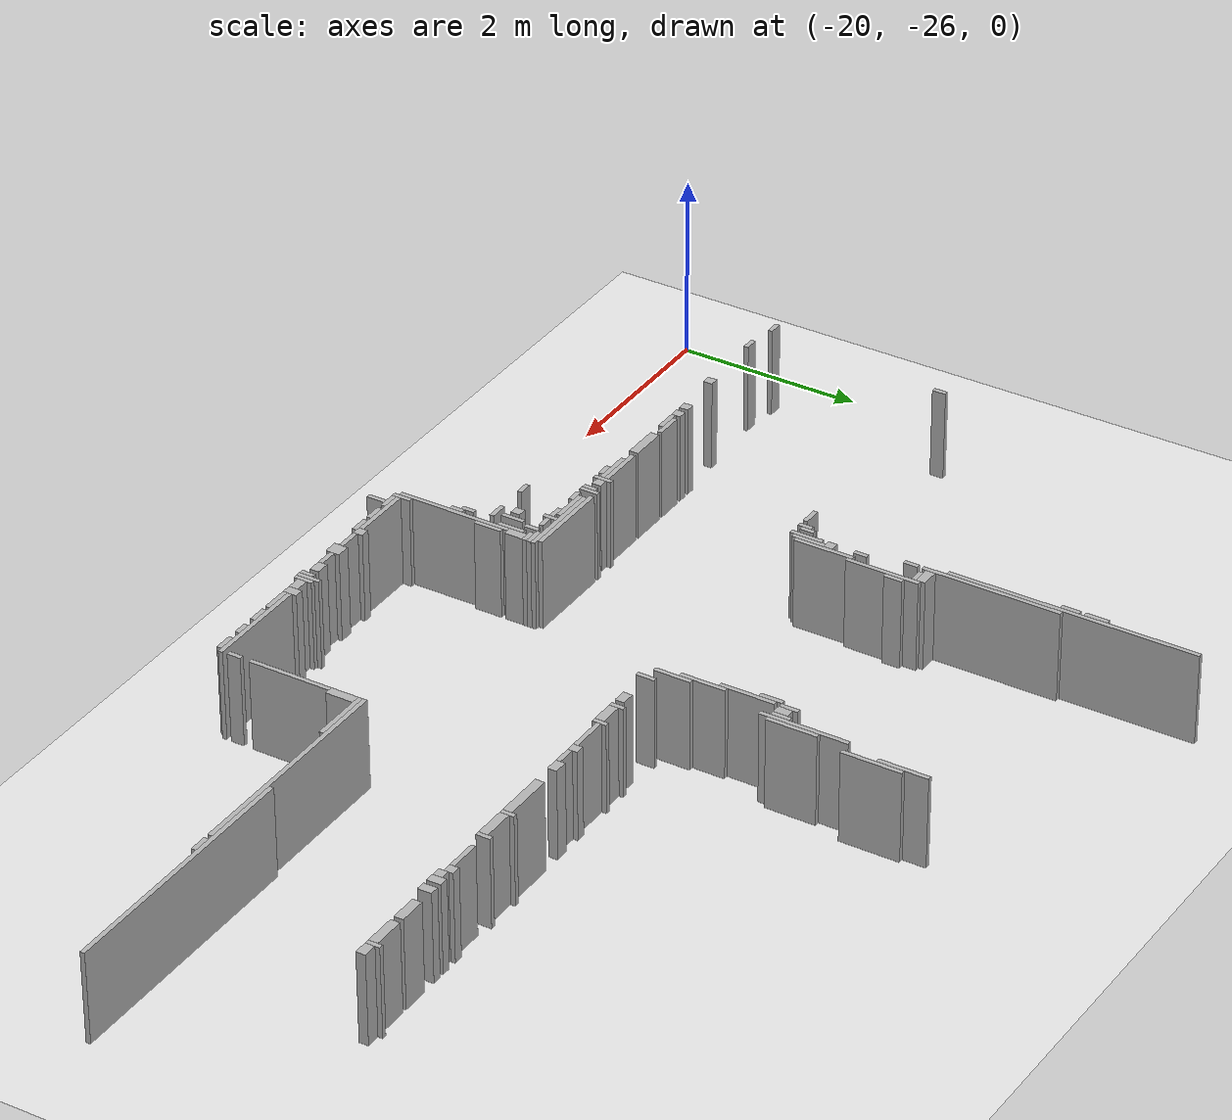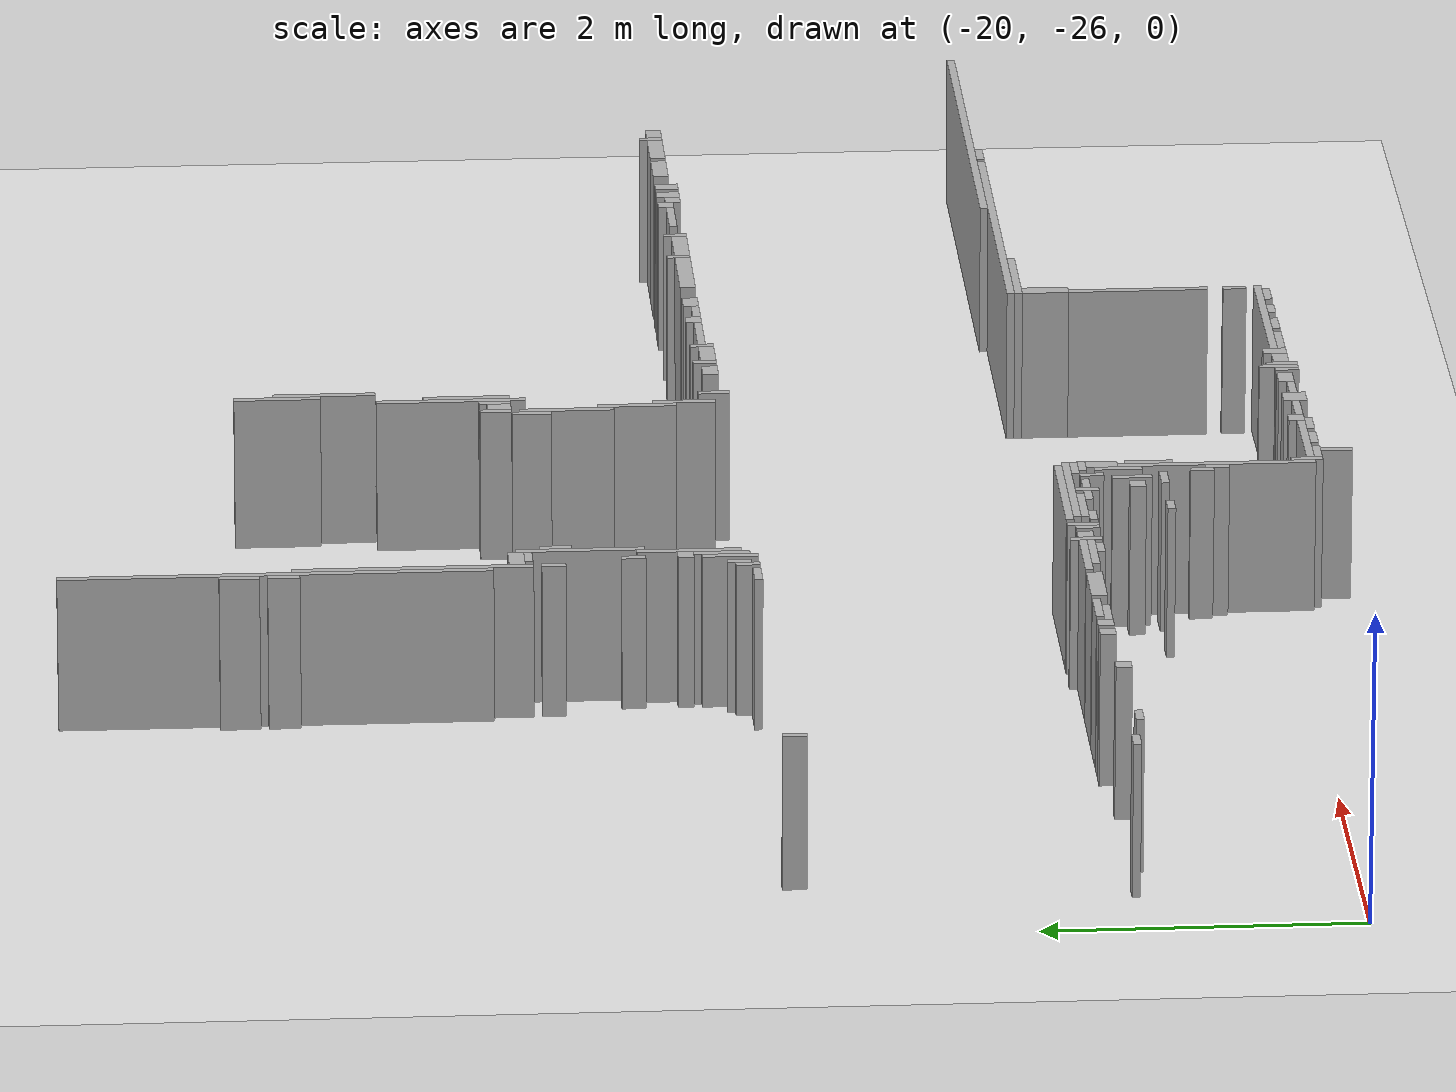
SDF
<sdf version="1.8">
 <world name="building">
  <model name="ground_plane">
   <static>true</static>
   <link name="link">
    <collision name="c"><geometry><plane><normal>0 0 1</normal><size>200 200</size></plane></geometry></collision>
    <visual name="v">
     <geometry><plane><normal>0 0 1</normal><size>200 200</size></plane></geometry>
     <material><ambient>0.9 0.9 0.9 1</ambient><diffuse>0.9 0.9 0.9 1</diffuse></material>
    </visual>
   </link>
  </model>
  <model name="walls">
   <static>true</static>
   <link name="wall_701">
    <pose>-16.375 -19.550 0.500 0 0 0</pose>
    <collision name="c"><geometry><box><size>0.050 2.700 1.000</size></box></geometry></collision>
    <visual name="v">
     <geometry><box><size>0.050 2.700 1.000</size></box></geometry>
     <material><ambient>0.6 0.6 0.6 1</ambient><diffuse>0.7 0.7 0.7 1</diffuse></material>
    </visual>
   </link>
   <link name="wall_711">
    <pose>-16.425 -19.325 0.500 0 0 0</pose>
    <collision name="c"><geometry><box><size>0.050 0.250 1.000</size></box></geometry></collision>
    <visual name="v">
     <geometry><box><size>0.050 0.250 1.000</size></box></geometry>
     <material><ambient>0.6 0.6 0.6 1</ambient><diffuse>0.7 0.7 0.7 1</diffuse></material>
    </visual>
   </link>
   <link name="wall_714">
    <pose>-13.325 -19.675 0.500 0 0 0</pose>
    <collision name="c"><geometry><box><size>0.050 0.550 1.000</size></box></geometry></collision>
    <visual name="v">
     <geometry><box><size>0.050 0.550 1.000</size></box></geometry>
     <material><ambient>0.6 0.6 0.6 1</ambient><diffuse>0.7 0.7 0.7 1</diffuse></material>
    </visual>
   </link>
   <link name="wall_715">
    <pose>-16.425 -19.600 0.500 0 0 0</pose>
    <collision name="c"><geometry><box><size>0.050 0.200 1.000</size></box></geometry></collision>
    <visual name="v">
     <geometry><box><size>0.050 0.200 1.000</size></box></geometry>
     <material><ambient>0.6 0.6 0.6 1</ambient><diffuse>0.7 0.7 0.7 1</diffuse></material>
    </visual>
   </link>
   <link name="wall_717">
    <pose>-16.325 -20.400 0.500 0 0 0</pose>
    <collision name="c"><geometry><box><size>0.050 1.500 1.000</size></box></geometry></collision>
    <visual name="v">
     <geometry><box><size>0.050 1.500 1.000</size></box></geometry>
     <material><ambient>0.6 0.6 0.6 1</ambient><diffuse>0.7 0.7 0.7 1</diffuse></material>
    </visual>
   </link>
   <link name="wall_718">
    <pose>-13.275 -19.975 0.500 0 0 0</pose>
    <collision name="c"><geometry><box><size>0.050 0.650 1.000</size></box></geometry></collision>
    <visual name="v">
     <geometry><box><size>0.050 0.650 1.000</size></box></geometry>
     <material><ambient>0.6 0.6 0.6 1</ambient><diffuse>0.7 0.7 0.7 1</diffuse></material>
    </visual>
   </link>
   <link name="wall_729">
    <pose>-13.425 -20.775 0.500 0 0 0</pose>
    <collision name="c"><geometry><box><size>0.050 0.950 1.000</size></box></geometry></collision>
    <visual name="v">
     <geometry><box><size>0.050 0.950 1.000</size></box></geometry>
     <material><ambient>0.6 0.6 0.6 1</ambient><diffuse>0.7 0.7 0.7 1</diffuse></material>
    </visual>
   </link>
   <link name="wall_731">
    <pose>-13.375 -20.875 0.500 0 0 0</pose>
    <collision name="c"><geometry><box><size>0.050 0.550 1.000</size></box></geometry></collision>
    <visual name="v">
     <geometry><box><size>0.050 0.550 1.000</size></box></geometry>
     <material><ambient>0.6 0.6 0.6 1</ambient><diffuse>0.7 0.7 0.7 1</diffuse></material>
    </visual>
   </link>
   <link name="wall_733">
    <pose>-13.625 -21.050 0.500 0 0 0</pose>
    <collision name="c"><geometry><box><size>0.050 0.200 1.000</size></box></geometry></collision>
    <visual name="v">
     <geometry><box><size>0.050 0.200 1.000</size></box></geometry>
     <material><ambient>0.6 0.6 0.6 1</ambient><diffuse>0.7 0.7 0.7 1</diffuse></material>
    </visual>
   </link>
   <link name="wall_734">
    <pose>-13.475 -21.050 0.500 0 0 0</pose>
    <collision name="c"><geometry><box><size>0.050 0.200 1.000</size></box></geometry></collision>
    <visual name="v">
     <geometry><box><size>0.050 0.200 1.000</size></box></geometry>
     <material><ambient>0.6 0.6 0.6 1</ambient><diffuse>0.7 0.7 0.7 1</diffuse></material>
    </visual>
   </link>
   <link name="wall_735">
    <pose>-16.200 -21.050 0.500 0 0 0</pose>
    <collision name="c"><geometry><box><size>0.200 0.100 1.000</size></box></geometry></collision>
    <visual name="v">
     <geometry><box><size>0.200 0.100 1.000</size></box></geometry>
     <material><ambient>0.6 0.6 0.6 1</ambient><diffuse>0.7 0.7 0.7 1</diffuse></material>
    </visual>
   </link>
   <link name="wall_736">
    <pose>-13.550 -21.075 0.500 0 0 0</pose>
    <collision name="c"><geometry><box><size>0.100 0.150 1.000</size></box></geometry></collision>
    <visual name="v">
     <geometry><box><size>0.100 0.150 1.000</size></box></geometry>
     <material><ambient>0.6 0.6 0.6 1</ambient><diffuse>0.7 0.7 0.7 1</diffuse></material>
    </visual>
   </link>
   <link name="wall_738">
    <pose>-16.075 -21.450 0.500 0 0 0</pose>
    <collision name="c"><geometry><box><size>0.050 0.800 1.000</size></box></geometry></collision>
    <visual name="v">
     <geometry><box><size>0.050 0.800 1.000</size></box></geometry>
     <material><ambient>0.6 0.6 0.6 1</ambient><diffuse>0.7 0.7 0.7 1</diffuse></material>
    </visual>
   </link>
   <link name="wall_741">
    <pose>-16.175 -21.125 0.500 0 0 0</pose>
    <collision name="c"><geometry><box><size>0.150 0.050 1.000</size></box></geometry></collision>
    <visual name="v">
     <geometry><box><size>0.150 0.050 1.000</size></box></geometry>
     <material><ambient>0.6 0.6 0.6 1</ambient><diffuse>0.7 0.7 0.7 1</diffuse></material>
    </visual>
   </link>
   <link name="wall_746">
    <pose>-13.675 -21.275 0.500 0 0 0</pose>
    <collision name="c"><geometry><box><size>0.050 0.250 1.000</size></box></geometry></collision>
    <visual name="v">
     <geometry><box><size>0.050 0.250 1.000</size></box></geometry>
     <material><ambient>0.6 0.6 0.6 1</ambient><diffuse>0.7 0.7 0.7 1</diffuse></material>
    </visual>
   </link>
   <link name="wall_749">
    <pose>-16.325 -21.275 0.500 0 0 0</pose>
    <collision name="c"><geometry><box><size>0.050 0.150 1.000</size></box></geometry></collision>
    <visual name="v">
     <geometry><box><size>0.050 0.150 1.000</size></box></geometry>
     <material><ambient>0.6 0.6 0.6 1</ambient><diffuse>0.7 0.7 0.7 1</diffuse></material>
    </visual>
   </link>
   <link name="wall_750">
    <pose>-16.025 -21.300 0.500 0 0 0</pose>
    <collision name="c"><geometry><box><size>0.050 0.200 1.000</size></box></geometry></collision>
    <visual name="v">
     <geometry><box><size>0.050 0.200 1.000</size></box></geometry>
     <material><ambient>0.6 0.6 0.6 1</ambient><diffuse>0.7 0.7 0.7 1</diffuse></material>
    </visual>
   </link>
   <link name="wall_751">
    <pose>-13.625 -21.500 0.500 0 0 0</pose>
    <collision name="c"><geometry><box><size>0.050 0.600 1.000</size></box></geometry></collision>
    <visual name="v">
     <geometry><box><size>0.050 0.600 1.000</size></box></geometry>
     <material><ambient>0.6 0.6 0.6 1</ambient><diffuse>0.7 0.7 0.7 1</diffuse></material>
    </visual>
   </link>
   <link name="wall_763">
    <pose>-16.225 -21.775 0.500 0 0 0</pose>
    <collision name="c"><geometry><box><size>0.050 0.150 1.000</size></box></geometry></collision>
    <visual name="v">
     <geometry><box><size>0.050 0.150 1.000</size></box></geometry>
     <material><ambient>0.6 0.6 0.6 1</ambient><diffuse>0.7 0.7 0.7 1</diffuse></material>
    </visual>
   </link>
   <link name="wall_764">
    <pose>-13.575 -21.950 0.500 0 0 0</pose>
    <collision name="c"><geometry><box><size>0.050 0.500 1.000</size></box></geometry></collision>
    <visual name="v">
     <geometry><box><size>0.050 0.500 1.000</size></box></geometry>
     <material><ambient>0.6 0.6 0.6 1</ambient><diffuse>0.7 0.7 0.7 1</diffuse></material>
    </visual>
   </link>
   <link name="wall_767">
    <pose>-16.125 -22.125 0.500 0 0 0</pose>
    <collision name="c"><geometry><box><size>0.050 0.650 1.000</size></box></geometry></collision>
    <visual name="v">
     <geometry><box><size>0.050 0.650 1.000</size></box></geometry>
     <material><ambient>0.6 0.6 0.6 1</ambient><diffuse>0.7 0.7 0.7 1</diffuse></material>
    </visual>
   </link>
   <link name="wall_791">
    <pose>-16.200 -22.100 0.500 0 0 0</pose>
    <collision name="c"><geometry><box><size>0.100 0.100 1.000</size></box></geometry></collision>
    <visual name="v">
     <geometry><box><size>0.100 0.100 1.000</size></box></geometry>
     <material><ambient>0.6 0.6 0.6 1</ambient><diffuse>0.7 0.7 0.7 1</diffuse></material>
    </visual>
   </link>
   <link name="wall_792">
    <pose>-13.525 -22.250 0.500 0 0 0</pose>
    <collision name="c"><geometry><box><size>0.050 0.400 1.000</size></box></geometry></collision>
    <visual name="v">
     <geometry><box><size>0.050 0.400 1.000</size></box></geometry>
     <material><ambient>0.6 0.6 0.6 1</ambient><diffuse>0.7 0.7 0.7 1</diffuse></material>
    </visual>
   </link>
   <link name="wall_800">
    <pose>-16.175 -22.325 0.500 0 0 0</pose>
    <collision name="c"><geometry><box><size>0.050 0.350 1.000</size></box></geometry></collision>
    <visual name="v">
     <geometry><box><size>0.050 0.350 1.000</size></box></geometry>
     <material><ambient>0.6 0.6 0.6 1</ambient><diffuse>0.7 0.7 0.7 1</diffuse></material>
    </visual>
   </link>
   <link name="wall_813">
    <pose>-16.225 -22.375 0.500 0 0 0</pose>
    <collision name="c"><geometry><box><size>0.050 0.350 1.000</size></box></geometry></collision>
    <visual name="v">
     <geometry><box><size>0.050 0.350 1.000</size></box></geometry>
     <material><ambient>0.6 0.6 0.6 1</ambient><diffuse>0.7 0.7 0.7 1</diffuse></material>
    </visual>
   </link>
   <link name="wall_828">
    <pose>-8.625 -22.325 0.500 0 0 0</pose>
    <collision name="c"><geometry><box><size>0.050 0.150 1.000</size></box></geometry></collision>
    <visual name="v">
     <geometry><box><size>0.050 0.150 1.000</size></box></geometry>
     <material><ambient>0.6 0.6 0.6 1</ambient><diffuse>0.7 0.7 0.7 1</diffuse></material>
    </visual>
   </link>
   <link name="wall_844">
    <pose>-10.875 -22.375 0.500 0 0 0</pose>
    <collision name="c"><geometry><box><size>0.050 0.150 1.000</size></box></geometry></collision>
    <visual name="v">
     <geometry><box><size>0.050 0.150 1.000</size></box></geometry>
     <material><ambient>0.6 0.6 0.6 1</ambient><diffuse>0.7 0.7 0.7 1</diffuse></material>
    </visual>
   </link>
   <link name="wall_845">
    <pose>-10.475 -22.375 0.500 0 0 0</pose>
    <collision name="c"><geometry><box><size>0.050 0.150 1.000</size></box></geometry></collision>
    <visual name="v">
     <geometry><box><size>0.050 0.150 1.000</size></box></geometry>
     <material><ambient>0.6 0.6 0.6 1</ambient><diffuse>0.7 0.7 0.7 1</diffuse></material>
    </visual>
   </link>
   <link name="wall_846">
    <pose>-9.900 -22.350 0.500 0 0 0</pose>
    <collision name="c"><geometry><box><size>0.100 0.100 1.000</size></box></geometry></collision>
    <visual name="v">
     <geometry><box><size>0.100 0.100 1.000</size></box></geometry>
     <material><ambient>0.6 0.6 0.6 1</ambient><diffuse>0.7 0.7 0.7 1</diffuse></material>
    </visual>
   </link>
   <link name="wall_847">
    <pose>-9.700 -22.375 0.500 0 0 0</pose>
    <collision name="c"><geometry><box><size>0.100 0.150 1.000</size></box></geometry></collision>
    <visual name="v">
     <geometry><box><size>0.100 0.150 1.000</size></box></geometry>
     <material><ambient>0.6 0.6 0.6 1</ambient><diffuse>0.7 0.7 0.7 1</diffuse></material>
    </visual>
   </link>
   <link name="wall_848">
    <pose>-9.550 -22.375 0.500 0 0 0</pose>
    <collision name="c"><geometry><box><size>0.100 0.150 1.000</size></box></geometry></collision>
    <visual name="v">
     <geometry><box><size>0.100 0.150 1.000</size></box></geometry>
     <material><ambient>0.6 0.6 0.6 1</ambient><diffuse>0.7 0.7 0.7 1</diffuse></material>
    </visual>
   </link>
   <link name="wall_849">
    <pose>-9.200 -22.350 0.500 0 0 0</pose>
    <collision name="c"><geometry><box><size>0.300 0.100 1.000</size></box></geometry></collision>
    <visual name="v">
     <geometry><box><size>0.300 0.100 1.000</size></box></geometry>
     <material><ambient>0.6 0.6 0.6 1</ambient><diffuse>0.7 0.7 0.7 1</diffuse></material>
    </visual>
   </link>
   <link name="wall_850">
    <pose>-8.825 -22.350 0.500 0 0 0</pose>
    <collision name="c"><geometry><box><size>0.350 0.100 1.000</size></box></geometry></collision>
    <visual name="v">
     <geometry><box><size>0.350 0.100 1.000</size></box></geometry>
     <material><ambient>0.6 0.6 0.6 1</ambient><diffuse>0.7 0.7 0.7 1</diffuse></material>
    </visual>
   </link>
   <link name="wall_851">
    <pose>-8.525 -22.350 0.500 0 0 0</pose>
    <collision name="c"><geometry><box><size>0.150 0.100 1.000</size></box></geometry></collision>
    <visual name="v">
     <geometry><box><size>0.150 0.100 1.000</size></box></geometry>
     <material><ambient>0.6 0.6 0.6 1</ambient><diffuse>0.7 0.7 0.7 1</diffuse></material>
    </visual>
   </link>
   <link name="wall_860">
    <pose>-16.325 -22.425 0.500 0 0 0</pose>
    <collision name="c"><geometry><box><size>0.050 0.150 1.000</size></box></geometry></collision>
    <visual name="v">
     <geometry><box><size>0.050 0.150 1.000</size></box></geometry>
     <material><ambient>0.6 0.6 0.6 1</ambient><diffuse>0.7 0.7 0.7 1</diffuse></material>
    </visual>
   </link>
   <link name="wall_861">
    <pose>-13.375 -22.450 0.500 0 0 0</pose>
    <collision name="c"><geometry><box><size>0.050 0.200 1.000</size></box></geometry></collision>
    <visual name="v">
     <geometry><box><size>0.050 0.200 1.000</size></box></geometry>
     <material><ambient>0.6 0.6 0.6 1</ambient><diffuse>0.7 0.7 0.7 1</diffuse></material>
    </visual>
   </link>
   <link name="wall_862">
    <pose>-12.825 -22.425 0.500 0 0 0</pose>
    <collision name="c"><geometry><box><size>0.050 0.150 1.000</size></box></geometry></collision>
    <visual name="v">
     <geometry><box><size>0.050 0.150 1.000</size></box></geometry>
     <material><ambient>0.6 0.6 0.6 1</ambient><diffuse>0.7 0.7 0.7 1</diffuse></material>
    </visual>
   </link>
   <link name="wall_863">
    <pose>-12.525 -22.425 0.500 0 0 0</pose>
    <collision name="c"><geometry><box><size>0.050 0.150 1.000</size></box></geometry></collision>
    <visual name="v">
     <geometry><box><size>0.050 0.150 1.000</size></box></geometry>
     <material><ambient>0.6 0.6 0.6 1</ambient><diffuse>0.7 0.7 0.7 1</diffuse></material>
    </visual>
   </link>
   <link name="wall_864">
    <pose>-12.050 -22.400 0.500 0 0 0</pose>
    <collision name="c"><geometry><box><size>0.100 0.100 1.000</size></box></geometry></collision>
    <visual name="v">
     <geometry><box><size>0.100 0.100 1.000</size></box></geometry>
     <material><ambient>0.6 0.6 0.6 1</ambient><diffuse>0.7 0.7 0.7 1</diffuse></material>
    </visual>
   </link>
   <link name="wall_865">
    <pose>-11.725 -22.400 0.500 0 0 0</pose>
    <collision name="c"><geometry><box><size>0.150 0.100 1.000</size></box></geometry></collision>
    <visual name="v">
     <geometry><box><size>0.150 0.100 1.000</size></box></geometry>
     <material><ambient>0.6 0.6 0.6 1</ambient><diffuse>0.7 0.7 0.7 1</diffuse></material>
    </visual>
   </link>
   <link name="wall_866">
    <pose>-11.175 -22.400 0.500 0 0 0</pose>
    <collision name="c"><geometry><box><size>0.550 0.100 1.000</size></box></geometry></collision>
    <visual name="v">
     <geometry><box><size>0.550 0.100 1.000</size></box></geometry>
     <material><ambient>0.6 0.6 0.6 1</ambient><diffuse>0.7 0.7 0.7 1</diffuse></material>
    </visual>
   </link>
   <link name="wall_867">
    <pose>-10.675 -22.400 0.500 0 0 0</pose>
    <collision name="c"><geometry><box><size>0.350 0.100 1.000</size></box></geometry></collision>
    <visual name="v">
     <geometry><box><size>0.350 0.100 1.000</size></box></geometry>
     <material><ambient>0.6 0.6 0.6 1</ambient><diffuse>0.7 0.7 0.7 1</diffuse></material>
    </visual>
   </link>
   <link name="wall_868">
    <pose>-10.125 -22.375 0.500 0 0 0</pose>
    <collision name="c"><geometry><box><size>0.350 0.050 1.000</size></box></geometry></collision>
    <visual name="v">
     <geometry><box><size>0.350 0.050 1.000</size></box></geometry>
     <material><ambient>0.6 0.6 0.6 1</ambient><diffuse>0.7 0.7 0.7 1</diffuse></material>
    </visual>
   </link>
   <link name="wall_869">
    <pose>-9.800 -22.400 0.500 0 0 0</pose>
    <collision name="c"><geometry><box><size>0.100 0.100 1.000</size></box></geometry></collision>
    <visual name="v">
     <geometry><box><size>0.100 0.100 1.000</size></box></geometry>
     <material><ambient>0.6 0.6 0.6 1</ambient><diffuse>0.7 0.7 0.7 1</diffuse></material>
    </visual>
   </link>
   <link name="wall_875">
    <pose>-16.375 -22.475 0.500 0 0 0</pose>
    <collision name="c"><geometry><box><size>0.050 0.150 1.000</size></box></geometry></collision>
    <visual name="v">
     <geometry><box><size>0.050 0.150 1.000</size></box></geometry>
     <material><ambient>0.6 0.6 0.6 1</ambient><diffuse>0.7 0.7 0.7 1</diffuse></material>
    </visual>
   </link>
   <link name="wall_876">
    <pose>-12.975 -22.450 0.500 0 0 0</pose>
    <collision name="c"><geometry><box><size>0.150 0.100 1.000</size></box></geometry></collision>
    <visual name="v">
     <geometry><box><size>0.150 0.100 1.000</size></box></geometry>
     <material><ambient>0.6 0.6 0.6 1</ambient><diffuse>0.7 0.7 0.7 1</diffuse></material>
    </visual>
   </link>
   <link name="wall_877">
    <pose>-12.675 -22.450 0.500 0 0 0</pose>
    <collision name="c"><geometry><box><size>0.250 0.100 1.000</size></box></geometry></collision>
    <visual name="v">
     <geometry><box><size>0.250 0.100 1.000</size></box></geometry>
     <material><ambient>0.6 0.6 0.6 1</ambient><diffuse>0.7 0.7 0.7 1</diffuse></material>
    </visual>
   </link>
   <link name="wall_878">
    <pose>-12.300 -22.425 0.500 0 0 0</pose>
    <collision name="c"><geometry><box><size>0.400 0.050 1.000</size></box></geometry></collision>
    <visual name="v">
     <geometry><box><size>0.400 0.050 1.000</size></box></geometry>
     <material><ambient>0.6 0.6 0.6 1</ambient><diffuse>0.7 0.7 0.7 1</diffuse></material>
    </visual>
   </link>
   <link name="wall_879">
    <pose>-11.900 -22.425 0.500 0 0 0</pose>
    <collision name="c"><geometry><box><size>0.200 0.050 1.000</size></box></geometry></collision>
    <visual name="v">
     <geometry><box><size>0.200 0.050 1.000</size></box></geometry>
     <material><ambient>0.6 0.6 0.6 1</ambient><diffuse>0.7 0.7 0.7 1</diffuse></material>
    </visual>
   </link>
   <link name="wall_889">
    <pose>-19.225 -22.575 0.500 0 0 0</pose>
    <collision name="c"><geometry><box><size>0.050 0.150 1.000</size></box></geometry></collision>
    <visual name="v">
     <geometry><box><size>0.050 0.150 1.000</size></box></geometry>
     <material><ambient>0.6 0.6 0.6 1</ambient><diffuse>0.7 0.7 0.7 1</diffuse></material>
    </visual>
   </link>
   <link name="wall_890">
    <pose>-16.550 -22.525 0.500 0 0 0</pose>
    <collision name="c"><geometry><box><size>0.200 0.050 1.000</size></box></geometry></collision>
    <visual name="v">
     <geometry><box><size>0.200 0.050 1.000</size></box></geometry>
     <material><ambient>0.6 0.6 0.6 1</ambient><diffuse>0.7 0.7 0.7 1</diffuse></material>
    </visual>
   </link>
   <link name="wall_947">
    <pose>-8.650 -24.425 0.500 0 0 0</pose>
    <collision name="c"><geometry><box><size>2.900 0.050 1.000</size></box></geometry></collision>
    <visual name="v">
     <geometry><box><size>2.900 0.050 1.000</size></box></geometry>
     <material><ambient>0.6 0.6 0.6 1</ambient><diffuse>0.7 0.7 0.7 1</diffuse></material>
    </visual>
   </link>
   <link name="wall_954">
    <pose>-10.450 -24.475 0.500 0 0 0</pose>
    <collision name="c"><geometry><box><size>2.500 0.050 1.000</size></box></geometry></collision>
    <visual name="v">
     <geometry><box><size>2.500 0.050 1.000</size></box></geometry>
     <material><ambient>0.6 0.6 0.6 1</ambient><diffuse>0.7 0.7 0.7 1</diffuse></material>
    </visual>
   </link>
   <link name="wall_955">
    <pose>-9.050 -24.475 0.500 0 0 0</pose>
    <collision name="c"><geometry><box><size>0.200 0.050 1.000</size></box></geometry></collision>
    <visual name="v">
     <geometry><box><size>0.200 0.050 1.000</size></box></geometry>
     <material><ambient>0.6 0.6 0.6 1</ambient><diffuse>0.7 0.7 0.7 1</diffuse></material>
    </visual>
   </link>
   <link name="wall_960">
    <pose>-16.075 -24.600 0.500 0 0 0</pose>
    <collision name="c"><geometry><box><size>0.050 0.200 1.000</size></box></geometry></collision>
    <visual name="v">
     <geometry><box><size>0.050 0.200 1.000</size></box></geometry>
     <material><ambient>0.6 0.6 0.6 1</ambient><diffuse>0.7 0.7 0.7 1</diffuse></material>
    </visual>
   </link>
   <link name="wall_961">
    <pose>-15.825 -24.600 0.500 0 0 0</pose>
    <collision name="c"><geometry><box><size>0.050 0.200 1.000</size></box></geometry></collision>
    <visual name="v">
     <geometry><box><size>0.050 0.200 1.000</size></box></geometry>
     <material><ambient>0.6 0.6 0.6 1</ambient><diffuse>0.7 0.7 0.7 1</diffuse></material>
    </visual>
   </link>
   <link name="wall_962">
    <pose>-15.275 -24.525 0.500 0 0 0</pose>
    <collision name="c"><geometry><box><size>0.950 0.050 1.000</size></box></geometry></collision>
    <visual name="v">
     <geometry><box><size>0.950 0.050 1.000</size></box></geometry>
     <material><ambient>0.6 0.6 0.6 1</ambient><diffuse>0.7 0.7 0.7 1</diffuse></material>
    </visual>
   </link>
   <link name="wall_963">
    <pose>-11.375 -24.525 0.500 0 0 0</pose>
    <collision name="c"><geometry><box><size>0.650 0.050 1.000</size></box></geometry></collision>
    <visual name="v">
     <geometry><box><size>0.650 0.050 1.000</size></box></geometry>
     <material><ambient>0.6 0.6 0.6 1</ambient><diffuse>0.7 0.7 0.7 1</diffuse></material>
    </visual>
   </link>
   <link name="wall_971">
    <pose>-17.650 -24.600 0.500 0 0 0</pose>
    <collision name="c"><geometry><box><size>0.100 0.100 1.000</size></box></geometry></collision>
    <visual name="v">
     <geometry><box><size>0.100 0.100 1.000</size></box></geometry>
     <material><ambient>0.6 0.6 0.6 1</ambient><diffuse>0.7 0.7 0.7 1</diffuse></material>
    </visual>
   </link>
   <link name="wall_972">
    <pose>-17.500 -24.600 0.500 0 0 0</pose>
    <collision name="c"><geometry><box><size>0.100 0.100 1.000</size></box></geometry></collision>
    <visual name="v">
     <geometry><box><size>0.100 0.100 1.000</size></box></geometry>
     <material><ambient>0.6 0.6 0.6 1</ambient><diffuse>0.7 0.7 0.7 1</diffuse></material>
    </visual>
   </link>
   <link name="wall_973">
    <pose>-17.250 -24.575 0.500 0 0 0</pose>
    <collision name="c"><geometry><box><size>0.300 0.050 1.000</size></box></geometry></collision>
    <visual name="v">
     <geometry><box><size>0.300 0.050 1.000</size></box></geometry>
     <material><ambient>0.6 0.6 0.6 1</ambient><diffuse>0.7 0.7 0.7 1</diffuse></material>
    </visual>
   </link>
   <link name="wall_974">
    <pose>-16.850 -24.600 0.500 0 0 0</pose>
    <collision name="c"><geometry><box><size>0.400 0.100 1.000</size></box></geometry></collision>
    <visual name="v">
     <geometry><box><size>0.400 0.100 1.000</size></box></geometry>
     <material><ambient>0.6 0.6 0.6 1</ambient><diffuse>0.7 0.7 0.7 1</diffuse></material>
    </visual>
   </link>
   <link name="wall_975">
    <pose>-16.350 -24.575 0.500 0 0 0</pose>
    <collision name="c"><geometry><box><size>0.500 0.050 1.000</size></box></geometry></collision>
    <visual name="v">
     <geometry><box><size>0.500 0.050 1.000</size></box></geometry>
     <material><ambient>0.6 0.6 0.6 1</ambient><diffuse>0.7 0.7 0.7 1</diffuse></material>
    </visual>
   </link>
   <link name="wall_976">
    <pose>-16.000 -24.600 0.500 0 0 0</pose>
    <collision name="c"><geometry><box><size>0.100 0.100 1.000</size></box></geometry></collision>
    <visual name="v">
     <geometry><box><size>0.100 0.100 1.000</size></box></geometry>
     <material><ambient>0.6 0.6 0.6 1</ambient><diffuse>0.7 0.7 0.7 1</diffuse></material>
    </visual>
   </link>
   <link name="wall_977">
    <pose>-15.875 -24.625 0.500 0 0 0</pose>
    <collision name="c"><geometry><box><size>0.050 0.150 1.000</size></box></geometry></collision>
    <visual name="v">
     <geometry><box><size>0.050 0.150 1.000</size></box></geometry>
     <material><ambient>0.6 0.6 0.6 1</ambient><diffuse>0.7 0.7 0.7 1</diffuse></material>
    </visual>
   </link>
   <link name="wall_978">
    <pose>-15.225 -24.575 0.500 0 0 0</pose>
    <collision name="c"><geometry><box><size>0.950 0.050 1.000</size></box></geometry></collision>
    <visual name="v">
     <geometry><box><size>0.950 0.050 1.000</size></box></geometry>
     <material><ambient>0.6 0.6 0.6 1</ambient><diffuse>0.7 0.7 0.7 1</diffuse></material>
    </visual>
   </link>
   <link name="wall_979">
    <pose>-11.650 -24.700 0.500 0 0 0</pose>
    <collision name="c"><geometry><box><size>0.100 0.300 1.000</size></box></geometry></collision>
    <visual name="v">
     <geometry><box><size>0.100 0.300 1.000</size></box></geometry>
     <material><ambient>0.6 0.6 0.6 1</ambient><diffuse>0.7 0.7 0.7 1</diffuse></material>
    </visual>
   </link>
   <link name="wall_982">
    <pose>-19.425 -24.625 0.500 0 0 0</pose>
    <collision name="c"><geometry><box><size>0.150 0.050 1.000</size></box></geometry></collision>
    <visual name="v">
     <geometry><box><size>0.150 0.050 1.000</size></box></geometry>
     <material><ambient>0.6 0.6 0.6 1</ambient><diffuse>0.7 0.7 0.7 1</diffuse></material>
    </visual>
   </link>
   <link name="wall_983">
    <pose>-18.200 -24.650 0.500 0 0 0</pose>
    <collision name="c"><geometry><box><size>0.100 0.100 1.000</size></box></geometry></collision>
    <visual name="v">
     <geometry><box><size>0.100 0.100 1.000</size></box></geometry>
     <material><ambient>0.6 0.6 0.6 1</ambient><diffuse>0.7 0.7 0.7 1</diffuse></material>
    </visual>
   </link>
   <link name="wall_984">
    <pose>-17.325 -24.625 0.500 0 0 0</pose>
    <collision name="c"><geometry><box><size>0.250 0.050 1.000</size></box></geometry></collision>
    <visual name="v">
     <geometry><box><size>0.250 0.050 1.000</size></box></geometry>
     <material><ambient>0.6 0.6 0.6 1</ambient><diffuse>0.7 0.7 0.7 1</diffuse></material>
    </visual>
   </link>
   <link name="wall_985">
    <pose>-16.300 -24.625 0.500 0 0 0</pose>
    <collision name="c"><geometry><box><size>0.400 0.050 1.000</size></box></geometry></collision>
    <visual name="v">
     <geometry><box><size>0.400 0.050 1.000</size></box></geometry>
     <material><ambient>0.6 0.6 0.6 1</ambient><diffuse>0.7 0.7 0.7 1</diffuse></material>
    </visual>
   </link>
   <link name="wall_986">
    <pose>-15.500 -24.625 0.500 0 0 0</pose>
    <collision name="c"><geometry><box><size>0.400 0.050 1.000</size></box></geometry></collision>
    <visual name="v">
     <geometry><box><size>0.400 0.050 1.000</size></box></geometry>
     <material><ambient>0.6 0.6 0.6 1</ambient><diffuse>0.7 0.7 0.7 1</diffuse></material>
    </visual>
   </link>
   <link name="wall_987">
    <pose>-15.225 -24.675 0.500 0 0 0</pose>
    <collision name="c"><geometry><box><size>0.050 0.150 1.000</size></box></geometry></collision>
    <visual name="v">
     <geometry><box><size>0.050 0.150 1.000</size></box></geometry>
     <material><ambient>0.6 0.6 0.6 1</ambient><diffuse>0.7 0.7 0.7 1</diffuse></material>
    </visual>
   </link>
   <link name="wall_988">
    <pose>-14.850 -24.625 0.500 0 0 0</pose>
    <collision name="c"><geometry><box><size>0.200 0.050 1.000</size></box></geometry></collision>
    <visual name="v">
     <geometry><box><size>0.200 0.050 1.000</size></box></geometry>
     <material><ambient>0.6 0.6 0.6 1</ambient><diffuse>0.7 0.7 0.7 1</diffuse></material>
    </visual>
   </link>
   <link name="wall_993">
    <pose>-19.025 -24.675 0.500 0 0 0</pose>
    <collision name="c"><geometry><box><size>0.150 0.050 1.000</size></box></geometry></collision>
    <visual name="v">
     <geometry><box><size>0.150 0.050 1.000</size></box></geometry>
     <material><ambient>0.6 0.6 0.6 1</ambient><diffuse>0.7 0.7 0.7 1</diffuse></material>
    </visual>
   </link>
   <link name="wall_994">
    <pose>-16.225 -24.675 0.500 0 0 0</pose>
    <collision name="c"><geometry><box><size>0.150 0.050 1.000</size></box></geometry></collision>
    <visual name="v">
     <geometry><box><size>0.150 0.050 1.000</size></box></geometry>
     <material><ambient>0.6 0.6 0.6 1</ambient><diffuse>0.7 0.7 0.7 1</diffuse></material>
    </visual>
   </link>
   <link name="wall_995">
    <pose>-15.675 -24.675 0.500 0 0 0</pose>
    <collision name="c"><geometry><box><size>0.150 0.050 1.000</size></box></geometry></collision>
    <visual name="v">
     <geometry><box><size>0.150 0.050 1.000</size></box></geometry>
     <material><ambient>0.6 0.6 0.6 1</ambient><diffuse>0.7 0.7 0.7 1</diffuse></material>
    </visual>
   </link>
   <link name="wall_996">
    <pose>-15.325 -24.675 0.500 0 0 0</pose>
    <collision name="c"><geometry><box><size>0.150 0.050 1.000</size></box></geometry></collision>
    <visual name="v">
     <geometry><box><size>0.150 0.050 1.000</size></box></geometry>
     <material><ambient>0.6 0.6 0.6 1</ambient><diffuse>0.7 0.7 0.7 1</diffuse></material>
    </visual>
   </link>
   <link name="wall_997">
    <pose>-15.125 -24.675 0.500 0 0 0</pose>
    <collision name="c"><geometry><box><size>0.150 0.050 1.000</size></box></geometry></collision>
    <visual name="v">
     <geometry><box><size>0.150 0.050 1.000</size></box></geometry>
     <material><ambient>0.6 0.6 0.6 1</ambient><diffuse>0.7 0.7 0.7 1</diffuse></material>
    </visual>
   </link>
   <link name="wall_998">
    <pose>-14.975 -24.725 0.500 0 0 0</pose>
    <collision name="c"><geometry><box><size>0.050 0.150 1.000</size></box></geometry></collision>
    <visual name="v">
     <geometry><box><size>0.050 0.150 1.000</size></box></geometry>
     <material><ambient>0.6 0.6 0.6 1</ambient><diffuse>0.7 0.7 0.7 1</diffuse></material>
    </visual>
   </link>
   <link name="wall_999">
    <pose>-14.825 -24.675 0.500 0 0 0</pose>
    <collision name="c"><geometry><box><size>0.150 0.050 1.000</size></box></geometry></collision>
    <visual name="v">
     <geometry><box><size>0.150 0.050 1.000</size></box></geometry>
     <material><ambient>0.6 0.6 0.6 1</ambient><diffuse>0.7 0.7 0.7 1</diffuse></material>
    </visual>
   </link>
   <link name="wall_1007">
    <pose>-14.800 -24.800 0.500 0 0 0</pose>
    <collision name="c"><geometry><box><size>0.100 0.200 1.000</size></box></geometry></collision>
    <visual name="v">
     <geometry><box><size>0.100 0.200 1.000</size></box></geometry>
     <material><ambient>0.6 0.6 0.6 1</ambient><diffuse>0.7 0.7 0.7 1</diffuse></material>
    </visual>
   </link>
   <link name="wall_1011">
    <pose>-14.875 -24.900 0.500 0 0 0</pose>
    <collision name="c"><geometry><box><size>0.050 0.300 1.000</size></box></geometry></collision>
    <visual name="v">
     <geometry><box><size>0.050 0.300 1.000</size></box></geometry>
     <material><ambient>0.6 0.6 0.6 1</ambient><diffuse>0.7 0.7 0.7 1</diffuse></material>
    </visual>
   </link>
   <link name="wall_1017">
    <pose>-15.025 -24.975 0.500 0 0 0</pose>
    <collision name="c"><geometry><box><size>0.050 0.250 1.000</size></box></geometry></collision>
    <visual name="v">
     <geometry><box><size>0.050 0.250 1.000</size></box></geometry>
     <material><ambient>0.6 0.6 0.6 1</ambient><diffuse>0.7 0.7 0.7 1</diffuse></material>
    </visual>
   </link>
   <link name="wall_1018">
    <pose>-11.675 -25.300 0.500 0 0 0</pose>
    <collision name="c"><geometry><box><size>0.050 0.900 1.000</size></box></geometry></collision>
    <visual name="v">
     <geometry><box><size>0.050 0.900 1.000</size></box></geometry>
     <material><ambient>0.6 0.6 0.6 1</ambient><diffuse>0.7 0.7 0.7 1</diffuse></material>
    </visual>
   </link>
   <link name="wall_1022">
    <pose>-14.825 -25.525 0.500 0 0 0</pose>
    <collision name="c"><geometry><box><size>0.050 1.250 1.000</size></box></geometry></collision>
    <visual name="v">
     <geometry><box><size>0.050 1.250 1.000</size></box></geometry>
     <material><ambient>0.6 0.6 0.6 1</ambient><diffuse>0.7 0.7 0.7 1</diffuse></material>
    </visual>
   </link>
   <link name="wall_1024">
    <pose>-15.150 -25.000 0.500 0 0 0</pose>
    <collision name="c"><geometry><box><size>0.100 0.100 1.000</size></box></geometry></collision>
    <visual name="v">
     <geometry><box><size>0.100 0.100 1.000</size></box></geometry>
     <material><ambient>0.6 0.6 0.6 1</ambient><diffuse>0.7 0.7 0.7 1</diffuse></material>
    </visual>
   </link>
   <link name="wall_1025">
    <pose>-14.775 -25.100 0.500 0 0 0</pose>
    <collision name="c"><geometry><box><size>0.050 0.300 1.000</size></box></geometry></collision>
    <visual name="v">
     <geometry><box><size>0.050 0.300 1.000</size></box></geometry>
     <material><ambient>0.6 0.6 0.6 1</ambient><diffuse>0.7 0.7 0.7 1</diffuse></material>
    </visual>
   </link>
   <link name="wall_1031">
    <pose>-15.525 -25.175 0.500 0 0 0</pose>
    <collision name="c"><geometry><box><size>0.150 0.050 1.000</size></box></geometry></collision>
    <visual name="v">
     <geometry><box><size>0.150 0.050 1.000</size></box></geometry>
     <material><ambient>0.6 0.6 0.6 1</ambient><diffuse>0.7 0.7 0.7 1</diffuse></material>
    </visual>
   </link>
   <link name="wall_1032">
    <pose>-15.050 -25.175 0.500 0 0 0</pose>
    <collision name="c"><geometry><box><size>0.200 0.050 1.000</size></box></geometry></collision>
    <visual name="v">
     <geometry><box><size>0.200 0.050 1.000</size></box></geometry>
     <material><ambient>0.6 0.6 0.6 1</ambient><diffuse>0.7 0.7 0.7 1</diffuse></material>
    </visual>
   </link>
   <link name="wall_1051">
    <pose>-14.925 -25.425 0.500 0 0 0</pose>
    <collision name="c"><geometry><box><size>0.050 0.150 1.000</size></box></geometry></collision>
    <visual name="v">
     <geometry><box><size>0.050 0.150 1.000</size></box></geometry>
     <material><ambient>0.6 0.6 0.6 1</ambient><diffuse>0.7 0.7 0.7 1</diffuse></material>
    </visual>
   </link>
   <link name="wall_1061">
    <pose>-14.875 -25.525 0.500 0 0 0</pose>
    <collision name="c"><geometry><box><size>0.050 0.150 1.000</size></box></geometry></collision>
    <visual name="v">
     <geometry><box><size>0.050 0.150 1.000</size></box></geometry>
     <material><ambient>0.6 0.6 0.6 1</ambient><diffuse>0.7 0.7 0.7 1</diffuse></material>
    </visual>
   </link>
   <link name="wall_1086">
    <pose>-11.675 -25.925 0.500 0 0 0</pose>
    <collision name="c"><geometry><box><size>0.050 0.150 1.000</size></box></geometry></collision>
    <visual name="v">
     <geometry><box><size>0.050 0.150 1.000</size></box></geometry>
     <material><ambient>0.6 0.6 0.6 1</ambient><diffuse>0.7 0.7 0.7 1</diffuse></material>
    </visual>
   </link>
   <link name="wall_1089">
    <pose>-13.125 -26.075 0.500 0 0 0</pose>
    <collision name="c"><geometry><box><size>0.050 0.250 1.000</size></box></geometry></collision>
    <visual name="v">
     <geometry><box><size>0.050 0.250 1.000</size></box></geometry>
     <material><ambient>0.6 0.6 0.6 1</ambient><diffuse>0.7 0.7 0.7 1</diffuse></material>
    </visual>
   </link>
   <link name="wall_1090">
    <pose>-14.775 -26.100 0.500 0 0 0</pose>
    <collision name="c"><geometry><box><size>0.050 0.200 1.000</size></box></geometry></collision>
    <visual name="v">
     <geometry><box><size>0.050 0.200 1.000</size></box></geometry>
     <material><ambient>0.6 0.6 0.6 1</ambient><diffuse>0.7 0.7 0.7 1</diffuse></material>
    </visual>
   </link>
   <link name="wall_1091">
    <pose>-13.075 -26.100 0.500 0 0 0</pose>
    <collision name="c"><geometry><box><size>0.050 0.200 1.000</size></box></geometry></collision>
    <visual name="v">
     <geometry><box><size>0.050 0.200 1.000</size></box></geometry>
     <material><ambient>0.6 0.6 0.6 1</ambient><diffuse>0.7 0.7 0.7 1</diffuse></material>
    </visual>
   </link>
   <link name="wall_1092">
    <pose>-12.850 -26.075 0.500 0 0 0</pose>
    <collision name="c"><geometry><box><size>0.100 0.150 1.000</size></box></geometry></collision>
    <visual name="v">
     <geometry><box><size>0.100 0.150 1.000</size></box></geometry>
     <material><ambient>0.6 0.6 0.6 1</ambient><diffuse>0.7 0.7 0.7 1</diffuse></material>
    </visual>
   </link>
   <link name="wall_1093">
    <pose>-14.050 -26.100 0.500 0 0 0</pose>
    <collision name="c"><geometry><box><size>0.100 0.100 1.000</size></box></geometry></collision>
    <visual name="v">
     <geometry><box><size>0.100 0.100 1.000</size></box></geometry>
     <material><ambient>0.6 0.6 0.6 1</ambient><diffuse>0.7 0.7 0.7 1</diffuse></material>
    </visual>
   </link>
   <link name="wall_1094">
    <pose>-13.675 -26.125 0.500 0 0 0</pose>
    <collision name="c"><geometry><box><size>0.150 0.150 1.000</size></box></geometry></collision>
    <visual name="v">
     <geometry><box><size>0.150 0.150 1.000</size></box></geometry>
     <material><ambient>0.6 0.6 0.6 1</ambient><diffuse>0.7 0.7 0.7 1</diffuse></material>
    </visual>
   </link>
   <link name="wall_1095">
    <pose>-13.325 -26.100 0.500 0 0 0</pose>
    <collision name="c"><geometry><box><size>0.150 0.100 1.000</size></box></geometry></collision>
    <visual name="v">
     <geometry><box><size>0.150 0.100 1.000</size></box></geometry>
     <material><ambient>0.6 0.6 0.6 1</ambient><diffuse>0.7 0.7 0.7 1</diffuse></material>
    </visual>
   </link>
   <link name="wall_1096">
    <pose>-13.175 -26.125 0.500 0 0 0</pose>
    <collision name="c"><geometry><box><size>0.050 0.150 1.000</size></box></geometry></collision>
    <visual name="v">
     <geometry><box><size>0.050 0.150 1.000</size></box></geometry>
     <material><ambient>0.6 0.6 0.6 1</ambient><diffuse>0.7 0.7 0.7 1</diffuse></material>
    </visual>
   </link>
   <link name="wall_1097">
    <pose>-12.975 -26.100 0.500 0 0 0</pose>
    <collision name="c"><geometry><box><size>0.150 0.100 1.000</size></box></geometry></collision>
    <visual name="v">
     <geometry><box><size>0.150 0.100 1.000</size></box></geometry>
     <material><ambient>0.6 0.6 0.6 1</ambient><diffuse>0.7 0.7 0.7 1</diffuse></material>
    </visual>
   </link>
   <link name="wall_1098">
    <pose>-12.225 -26.075 0.500 0 0 0</pose>
    <collision name="c"><geometry><box><size>1.150 0.050 1.000</size></box></geometry></collision>
    <visual name="v">
     <geometry><box><size>1.150 0.050 1.000</size></box></geometry>
     <material><ambient>0.6 0.6 0.6 1</ambient><diffuse>0.7 0.7 0.7 1</diffuse></material>
    </visual>
   </link>
   <link name="wall_1100">
    <pose>-14.425 -26.125 0.500 0 0 0</pose>
    <collision name="c"><geometry><box><size>0.650 0.050 1.000</size></box></geometry></collision>
    <visual name="v">
     <geometry><box><size>0.650 0.050 1.000</size></box></geometry>
     <material><ambient>0.6 0.6 0.6 1</ambient><diffuse>0.7 0.7 0.7 1</diffuse></material>
    </visual>
   </link>
   <link name="wall_1101">
    <pose>-13.875 -26.125 0.500 0 0 0</pose>
    <collision name="c"><geometry><box><size>0.250 0.050 1.000</size></box></geometry></collision>
    <visual name="v">
     <geometry><box><size>0.250 0.050 1.000</size></box></geometry>
     <material><ambient>0.6 0.6 0.6 1</ambient><diffuse>0.7 0.7 0.7 1</diffuse></material>
    </visual>
   </link>
   <link name="wall_1102">
    <pose>-13.500 -26.125 0.500 0 0 0</pose>
    <collision name="c"><geometry><box><size>0.200 0.050 1.000</size></box></geometry></collision>
    <visual name="v">
     <geometry><box><size>0.200 0.050 1.000</size></box></geometry>
     <material><ambient>0.6 0.6 0.6 1</ambient><diffuse>0.7 0.7 0.7 1</diffuse></material>
    </visual>
   </link>
   <link name="wall_1103">
    <pose>-12.650 -26.125 0.500 0 0 0</pose>
    <collision name="c"><geometry><box><size>0.300 0.050 1.000</size></box></geometry></collision>
    <visual name="v">
     <geometry><box><size>0.300 0.050 1.000</size></box></geometry>
     <material><ambient>0.6 0.6 0.6 1</ambient><diffuse>0.7 0.7 0.7 1</diffuse></material>
    </visual>
   </link>
   <link name="wall_1104">
    <pose>-12.350 -26.125 0.500 0 0 0</pose>
    <collision name="c"><geometry><box><size>0.200 0.050 1.000</size></box></geometry></collision>
    <visual name="v">
     <geometry><box><size>0.200 0.050 1.000</size></box></geometry>
     <material><ambient>0.6 0.6 0.6 1</ambient><diffuse>0.7 0.7 0.7 1</diffuse></material>
    </visual>
   </link>
   <link name="wall_1105">
    <pose>-12.075 -26.125 0.500 0 0 0</pose>
    <collision name="c"><geometry><box><size>0.150 0.050 1.000</size></box></geometry></collision>
    <visual name="v">
     <geometry><box><size>0.150 0.050 1.000</size></box></geometry>
     <material><ambient>0.6 0.6 0.6 1</ambient><diffuse>0.7 0.7 0.7 1</diffuse></material>
    </visual>
   </link>
   <link name="wall_1106">
    <pose>-11.800 -26.125 0.500 0 0 0</pose>
    <collision name="c"><geometry><box><size>0.200 0.050 1.000</size></box></geometry></collision>
    <visual name="v">
     <geometry><box><size>0.200 0.050 1.000</size></box></geometry>
     <material><ambient>0.6 0.6 0.6 1</ambient><diffuse>0.7 0.7 0.7 1</diffuse></material>
    </visual>
   </link>
   <link name="wall_1108">
    <pose>-14.650 -26.175 0.500 0 0 0</pose>
    <collision name="c"><geometry><box><size>0.200 0.050 1.000</size></box></geometry></collision>
    <visual name="v">
     <geometry><box><size>0.200 0.050 1.000</size></box></geometry>
     <material><ambient>0.6 0.6 0.6 1</ambient><diffuse>0.7 0.7 0.7 1</diffuse></material>
    </visual>
   </link>
   <link name="wall_1109">
    <pose>-14.400 -26.175 0.500 0 0 0</pose>
    <collision name="c"><geometry><box><size>0.200 0.050 1.000</size></box></geometry></collision>
    <visual name="v">
     <geometry><box><size>0.200 0.050 1.000</size></box></geometry>
     <material><ambient>0.6 0.6 0.6 1</ambient><diffuse>0.7 0.7 0.7 1</diffuse></material>
    </visual>
   </link>
   <link name="wall_1110">
    <pose>-14.150 -26.175 0.500 0 0 0</pose>
    <collision name="c"><geometry><box><size>0.200 0.050 1.000</size></box></geometry></collision>
    <visual name="v">
     <geometry><box><size>0.200 0.050 1.000</size></box></geometry>
     <material><ambient>0.6 0.6 0.6 1</ambient><diffuse>0.7 0.7 0.7 1</diffuse></material>
    </visual>
   </link>
   <link name="wall_1113">
    <pose>-14.625 -26.300 0.500 0 0 0</pose>
    <collision name="c"><geometry><box><size>0.050 0.200 1.000</size></box></geometry></collision>
    <visual name="v">
     <geometry><box><size>0.050 0.200 1.000</size></box></geometry>
     <material><ambient>0.6 0.6 0.6 1</ambient><diffuse>0.7 0.7 0.7 1</diffuse></material>
    </visual>
   </link>
  </model>
 </world>
</sdf>
